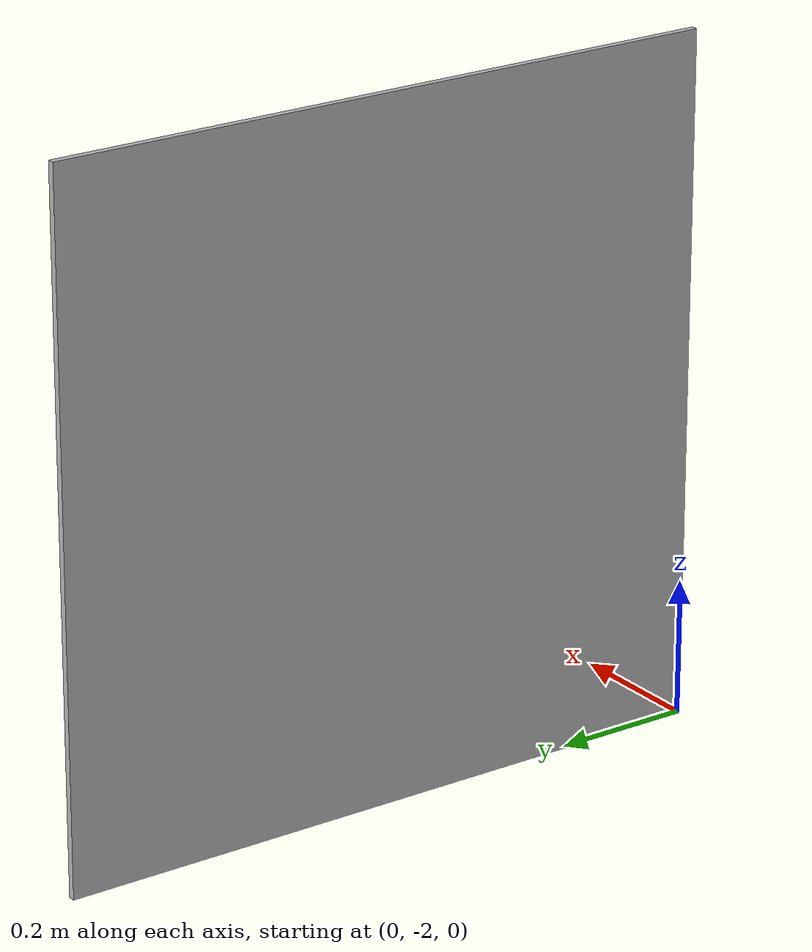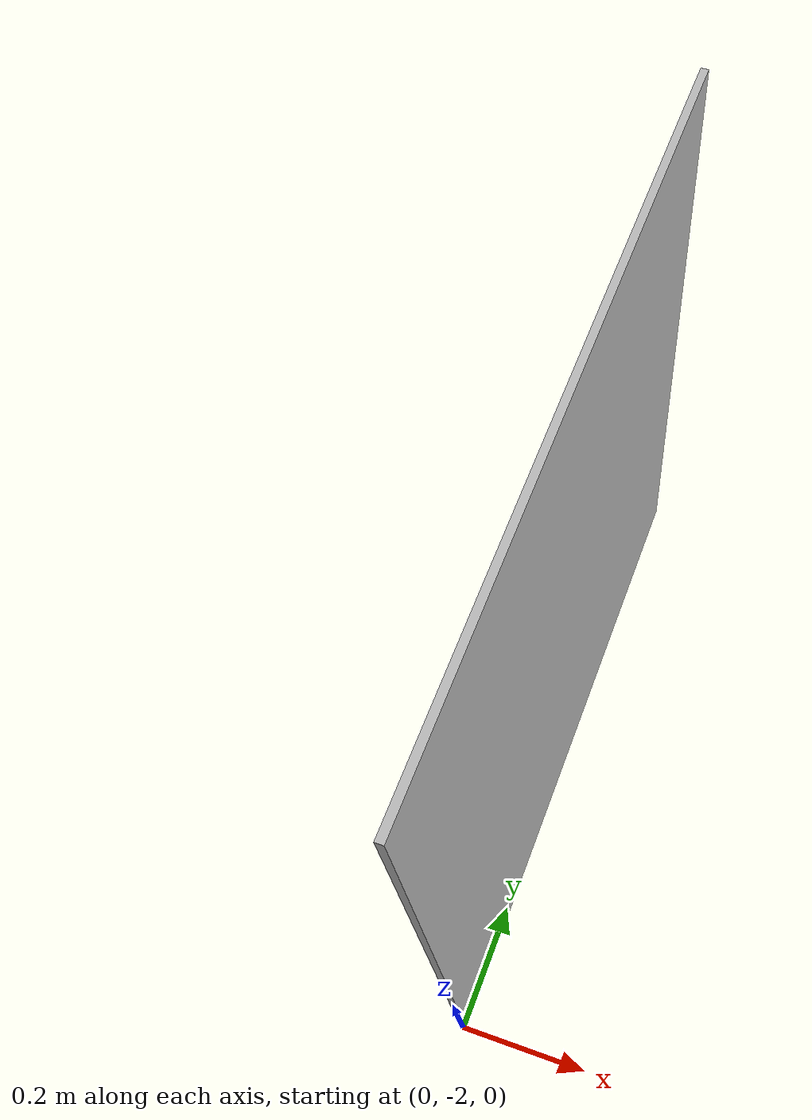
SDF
<?xml version="1.0" ?>
<sdf version="1.6">

  <model name="apriltag">
    <static>true</static>
    <pose>0 0 0.5 0 0 0</pose>
    <link name="box">
      <pose>0 -1.5 0 0 0 0</pose>
      <gravity>0</gravity>

     <inertial>
        <mass>0.001</mass>
        <inertia> <!-- inertias are tricky to compute -->
          <!-- http://gazebosim.org/tutorials?tut=inertia&cat=build_robot -->
          <ixx>0.001</ixx>       <!-- for a box: ixx = 0.083 * mass * (y*y + z*z) -->
          <ixy>0.001</ixy>         <!-- for a box: ixy = 0 -->
          <ixz>0.001</ixz>         <!-- for a box: ixz = 0 -->
          <iyy>0.001</iyy>       <!-- for a box: iyy = 0.083 * mass * (x*x + z*z) -->
          <iyz>0.001</iyz>         <!-- for a box: iyz = 0 -->
          <izz>0.001</izz>       <!-- for a box: izz = 0.083 * mass * (x*x + y*y) -->
        </inertia>
      </inertial>

      <collision name="collision">
        <geometry>
          <box>
            <size>0.01 1 1</size>
          </box>
        </geometry>
      </collision>

      <visual name="visual">
        <geometry>
          <box>
            <size>0.01 1 1</size>
          </box>
        </geometry>
        <material>
          <script>
            <uri>media://materials/scripts</uri>
            <uri>media://materials/textures</uri>
            <name>a_0/Image</name>
          </script>
        </material>
      </visual>

    </link>

  </model>
</sdf>
